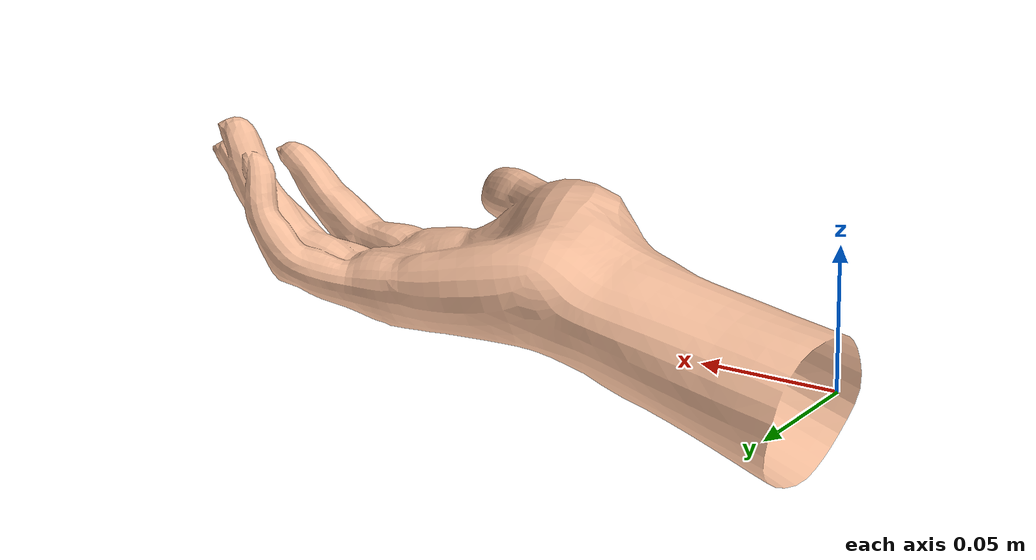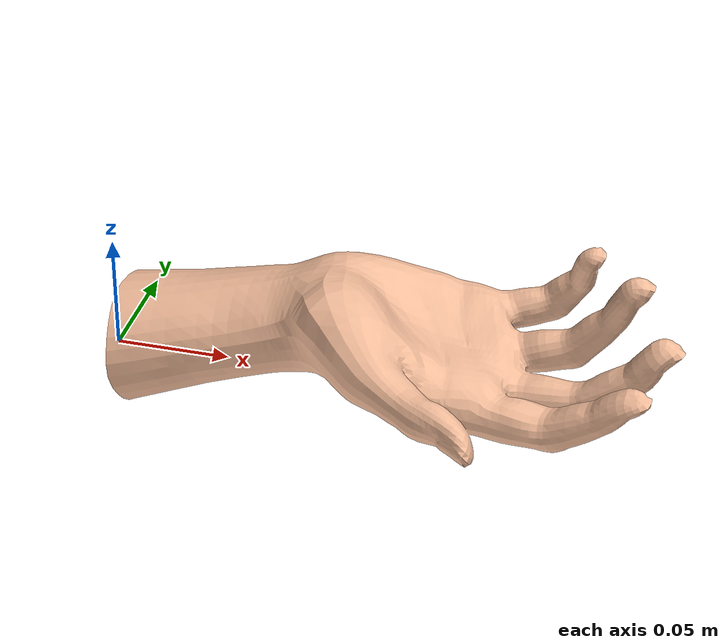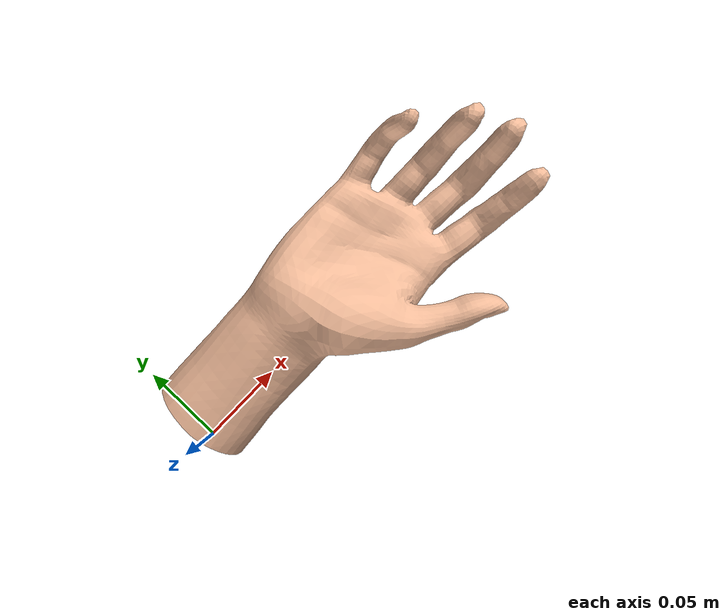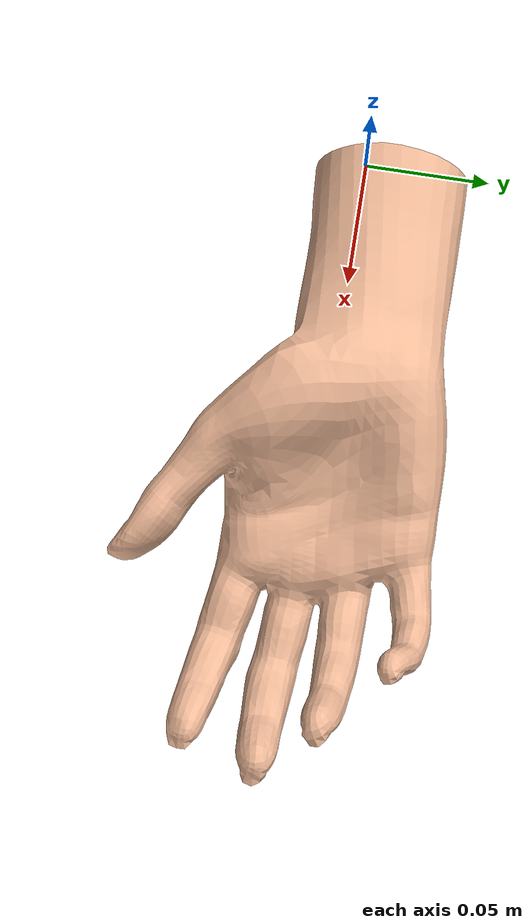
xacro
<?xml version="1.0"?>
<robot name="hand">

  <link name="hand_link">
    <inertial>
      <origin xyz="0 0 0" rpy="0 0 0"/>
      <mass value="0.1"/>
      <inertia ixx="1e-3" ixy="0" ixz="0" iyy="1e-3" iyz="0" izz="1e-3"/>
    </inertial>
    <visual>
      <origin xyz="0 0 0" rpy="-1.5708 0 -1.5708"/>
      <geometry>
          <mesh filename="package://aerial_handover/urdf/mesh/hand.dae" scale= "0.01 0.01 0.01"/>
      </geometry>
    </visual>
  </link>

  <gazebo reference="hand_link">
    <gravity>false</gravity>
  </gazebo>

</robot>
